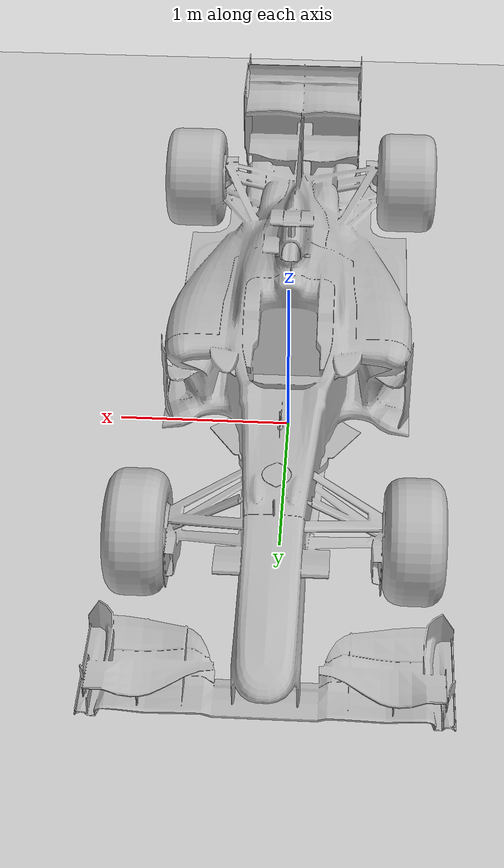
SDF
<?xml version="1.0" ?>

<sdf version="1.6">
  <world name="default">

    <include>
      <uri>model://sun</uri>
    </include>
    <include>
      <uri>model://f1_renault</uri>
      <pose> 0.0 0.0 0.2 0 0 0 </pose>
    </include>

    <include>
      <uri>model://ground_plane</uri>
    </include>
  </world>
</sdf>

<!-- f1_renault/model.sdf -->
<sdf version="1.4">
<model name="f1_renault">
  <pose>0 0 0 0 0 0</pose>
  <static>false</static>
  <link name="chassis_link">
    	<pose>0 0 0 0 0 1.57</pose>
	<inertial>
        <mass>10</mass>
        <inertia>
          <ixx>1</ixx>
          <ixy>0.0</ixy>
          <iyy>1</iyy>
          <ixz>0.0</ixz>
          <iyz>0.0</iyz>
          <izz>1.0</izz>
      </inertia>
    </inertial>
    <collision name="collision">
        <geometry>
            <mesh>
                 <uri>model://f1_renault/Renault/Car.obj</uri>
                 <scale>1 1 1</scale>
            </mesh>
        </geometry>
    </collision>
    <visual name="visual">
        <geometry>
          <mesh>
            <uri>model://f1_renault/Renault/Car.obj</uri>
            <scale>1 1 1</scale>
        </mesh>
      </geometry>
    </visual>

  </link>
  <link name="camera_f1">
        <pose>0 0 0 0 0 0</pose>
        <inertial>
          <mass>2</mass>
            <inertia>
                <ixx>1.000000</ixx>
                <ixy>0.000000</ixy>
                <ixz>0.000000</ixz>
                <iyy>1.000000</iyy>
                <iyz>0.000000</iyz>
                <izz>1.000000</izz>
            </inertia>
        </inertial>
        <!-- Visual sphere to debug camera position-->
        <velocity_decay>
          <linear>0.000000</linear>
          <angular>0.000000</angular>
        </velocity_decay>
        <self_collide>0</self_collide>
        <kinematic>0</kinematic>
        <gravity>0</gravity>

        <sensor name='cam_f1' type='camera'>
          <pose>0 2.5 0.7 0 0 1.57</pose>
          <update_rate>20.000000</update_rate>
          <camera name='cam'>
            <horizontal_fov>1.570000</horizontal_fov>
            <image>
              <width>640</width>
              <height>480</height>
              <format>R8G8B8</format>
            </image>
            <clip>
              <near>0.100000</near>
              <far>15.000000</far>
            </clip>
          </camera>
          <plugin name="camera_controller" filename="libgazebo_ros_camera.so">
            <alwaysOn>true</alwaysOn>
            <updateRate>0.0</updateRate>
            <cameraName>camera</cameraName>
            <imageTopicName>image_raw</imageTopicName>
            <cameraInfoTopicName>camera_info</cameraInfoTopicName>
            <frameName>camera_f1</frameName>
            <hackBaseline>0.07</hackBaseline>
            <distortionK1>0.0</distortionK1>
            <distortionK2>0.0</distortionK2>
            <distortionK3>0.0</distortionK3>
            <distortionT1>0.0</distortionT1>
            <distortionT2>0.0</distortionT2>
            <ros>
                <namespace>f1ros2</namespace>
            </ros>
          </plugin>
        </sensor>

    </link>

    <joint type="fixed" name="camera_f1_joint">
        <pose>0 2.7 0.2 0 0 1.57</pose>
        <child>camera_f1</child>
        <parent>chassis_link</parent>
    </joint>
  <plugin name="object_controller" filename="libgazebo_ros_planar_move.so">
      <namespace>f1ros2</namespace>
      <commandTopic>cmd_vel</commandTopic>
      <odometryTopic>odom</odometryTopic>
      <odometryFrame>odom</odometryFrame>
      <odometryRate>20.0</odometryRate>
      <robotBaseFrame>chassis_link</robotBaseFrame>
  </plugin>
</model>
</sdf>
